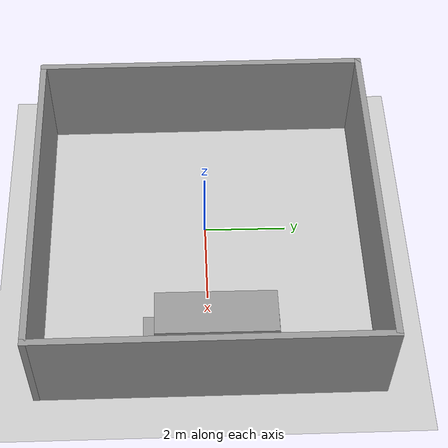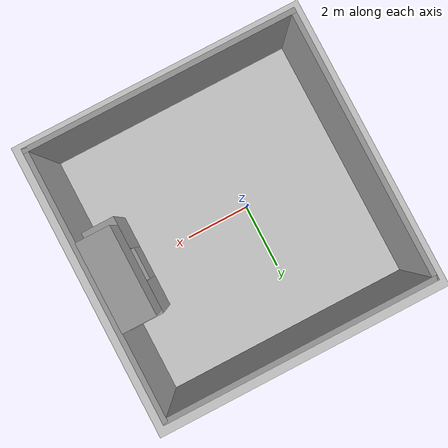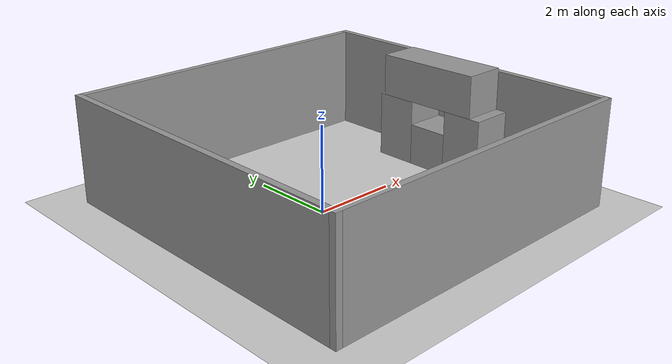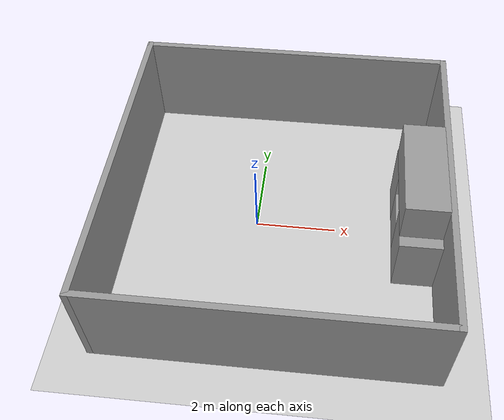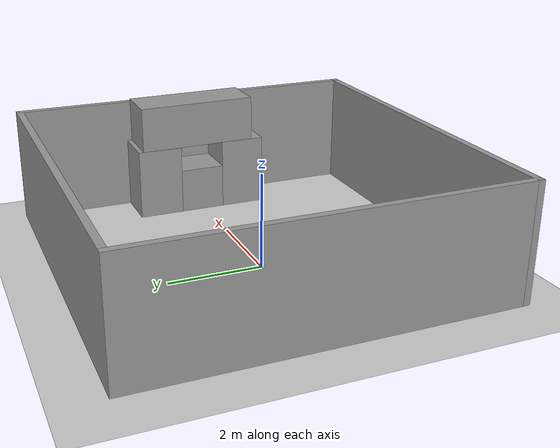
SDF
<sdf version="1.7">
 <world name="default">
  <light name="sun" type="directional">
   <pose>0 0 10 0 -0 0</pose>
   <diffuse>0.8 0.8 0.8 1</diffuse>
   <specular>0.2 0.2 0.2 1</specular>
   <attenuation>
    <range>1000</range>
    <constant>0.9</constant>
    <linear>0.01</linear>
    <quadratic>0.001</quadratic>
   </attenuation>
   <direction>-0.5 0.1 -0.9</direction>
   <spot><inner_angle>0</inner_angle><outer_angle>0</outer_angle><falloff>0</falloff></spot>
  </light>
  <model name="ground_plane">
   <static>1</static>
   <link name="link">
    <collision name="collision">
     <geometry><plane><normal>0 0 1</normal><size>100 100</size></plane></geometry>
     <surface>
      <contact><collide_bitmask>65535</collide_bitmask></contact>
      <friction><ode><mu>100</mu><mu2>50</mu2></ode></friction>
     </surface>
    </collision>
    <visual name="visual">
     <cast_shadows>0</cast_shadows>
     <geometry><plane><normal>0 0 1</normal><size>100 100</size></plane></geometry>
     <material>
      <script><uri>file://media/materials/scripts/gazebo.material</uri><name>Gazebo/Grey</name></script>
     </material>
    </visual>
   </link>
  </model>
  <gravity>0 0 -9.8</gravity>
  <magnetic_field>6e-06 2.3e-05 -4.2e-05</magnetic_field>
  <atmosphere type="adiabatic"/>
  <physics type="ode">
   <max_step_size>0.001</max_step_size>
   <real_time_factor>1</real_time_factor>
   <real_time_update_rate>1000</real_time_update_rate>
  </physics>
  <scene><ambient>0.4 0.4 0.4 1</ambient><background>0.7 0.7 0.7 1</background><shadows>1</shadows></scene>
  <spherical_coordinates>
   <surface_model>EARTH_WGS84</surface_model>
   <latitude_deg>0</latitude_deg>
   <longitude_deg>0</longitude_deg>
   <elevation>0</elevation>
   <heading_deg>0</heading_deg>
  </spherical_coordinates>
  <model name="test">
   <pose>0.591707 0.23619 0 0 -0 0</pose>
   <link name="Wall_5">
    <collision name="Wall_5_Collision">
     <geometry><box><size>8 0.15 2.5</size></box></geometry>
     <pose>0 0 1.25 0 -0 0</pose>
    </collision>
    <visual name="Wall_5_Visual">
     <pose>0 0 1.25 0 -0 0</pose>
     <geometry><box><size>8 0.15 2.5</size></box></geometry>
     <material>
      <script><uri>file://media/materials/scripts/gazebo.material</uri><name>Gazebo/Grey</name></script>
      <ambient>1 1 1 1</ambient>
     </material>
     <meta><layer>0</layer></meta>
    </visual>
    <pose>-0 3.6938 0 0 -0 0</pose>
   </link>
   <link name="Wall_6">
    <collision name="Wall_6_Collision">
     <geometry><box><size>8 0.15 2.5</size></box></geometry>
     <pose>0 0 1.25 0 -0 0</pose>
    </collision>
    <visual name="Wall_6_Visual">
     <pose>0 0 1.25 0 -0 0</pose>
     <geometry><box><size>8 0.15 2.5</size></box></geometry>
     <material>
      <script><uri>file://media/materials/scripts/gazebo.material</uri><name>Gazebo/Grey</name></script>
      <ambient>1 1 1 1</ambient>
     </material>
     <meta><layer>0</layer></meta>
    </visual>
    <pose>3.925 -0.231201 0 0 -0 -1.5708</pose>
   </link>
   <link name="Wall_7">
    <collision name="Wall_7_Collision">
     <geometry><box><size>8 0.15 2.5</size></box></geometry>
     <pose>0 0 1.25 0 -0 0</pose>
    </collision>
    <visual name="Wall_7_Visual">
     <pose>0 0 1.25 0 -0 0</pose>
     <geometry><box><size>8 0.15 2.5</size></box></geometry>
     <material>
      <script><uri>file://media/materials/scripts/gazebo.material</uri><name>Gazebo/Grey</name></script>
      <ambient>1 1 1 1</ambient>
     </material>
     <meta><layer>0</layer></meta>
    </visual>
    <pose>-0 -4.1562 0 0 -0 3.14159</pose>
   </link>
   <link name="Wall_8">
    <collision name="Wall_8_Collision">
     <geometry><box><size>8 0.15 2.5</size></box></geometry>
     <pose>0 0 1.25 0 -0 0</pose>
    </collision>
    <visual name="Wall_8_Visual">
     <pose>0 0 1.25 0 -0 0</pose>
     <geometry><box><size>8 0.15 2.5</size></box></geometry>
     <material>
      <script><uri>file://media/materials/scripts/gazebo.material</uri><name>Gazebo/Grey</name></script>
      <ambient>1 1 1 1</ambient>
     </material>
     <meta><layer>0</layer></meta>
    </visual>
    <pose>-3.925 -0.231201 0 0 -0 1.5708</pose>
   </link>
   <static>1</static>
  </model>
  <model name="unit_box">
   <pose>3.94163 0.044048 0.500001 -2e-06 1e-06 -8.1e-05</pose>
   <link name="link">
    <inertial>
     <mass>1</mass>
     <inertia>
      <ixx>0.166667</ixx>
      <ixy>0</ixy>
      <ixz>0</ixz>
      <iyy>0.166667</iyy>
      <iyz>0</iyz>
      <izz>0.166667</izz>
     </inertia>
    </inertial>
    <collision name="collision"><geometry><box><size>0.999999 0.999999 1</size></box></geometry></collision>
    <visual name="visual">
     <geometry><box><size>0.999999 0.999999 1</size></box></geometry>
     <material>
      <script><name>Gazebo/Grey</name><uri>file://media/materials/scripts/gazebo.material</uri></script>
     </material>
    </visual>
   </link>
  </model>
  <model name="unit_box_0">
   <pose>3.94167 1.04405 0.783429 0 0 -8e-05</pose>
   <link name="link">
    <inertial>
     <mass>1</mass>
     <inertia>
      <ixx>0.166667</ixx>
      <ixy>0</ixy>
      <ixz>0</ixz>
      <iyy>0.166667</iyy>
      <iyz>0</iyz>
      <izz>0.166667</izz>
     </inertia>
    </inertial>
    <collision name="collision"><geometry><box><size>1 1 1.56686</size></box></geometry></collision>
    <visual name="visual">
     <geometry><box><size>1 1 1.56686</size></box></geometry>
     <material>
      <script><name>Gazebo/Grey</name><uri>file://media/materials/scripts/gazebo.material</uri></script>
     </material>
    </visual>
   </link>
  </model>
  <model name="unit_box_1">
   <pose>3.94163 -0.955951 0.7901 -1e-06 -2e-06 -8.2e-05</pose>
   <link name="link">
    <inertial>
     <mass>1</mass>
     <inertia>
      <ixx>0.166667</ixx>
      <ixy>0</ixy>
      <ixz>0</ixz>
      <iyy>0.166667</iyy>
      <iyz>0</iyz>
      <izz>0.166667</izz>
     </inertia>
    </inertial>
    <collision name="collision"><geometry><box><size>1 1 1.5802</size></box></geometry></collision>
    <visual name="visual">
     <geometry><box><size>1 1 1.5802</size></box></geometry>
     <material>
      <script><name>Gazebo/Grey</name><uri>file://media/materials/scripts/gazebo.material</uri></script>
     </material>
    </visual>
   </link>
  </model>
  <model name="unit_box_3">
   <pose>3.94158 0.129354 2.07608 -0.007053 0 -3.6e-05</pose>
   <link name="link">
    <inertial>
     <mass>1</mass>
     <inertia>
      <ixx>0.166667</ixx>
      <ixy>0</ixy>
      <ixz>0</ixz>
      <iyy>0.166667</iyy>
      <iyz>0</iyz>
      <izz>0.166667</izz>
     </inertia>
    </inertial>
    <collision name="collision"><geometry><box><size>1 2.61941 1</size></box></geometry></collision>
    <visual name="visual">
     <geometry><box><size>1 2.61941 1</size></box></geometry>
     <material>
      <script><name>Gazebo/Grey</name><uri>file://media/materials/scripts/gazebo.material</uri></script>
     </material>
    </visual>
   </link>
  </model>
 </world>
</sdf>
